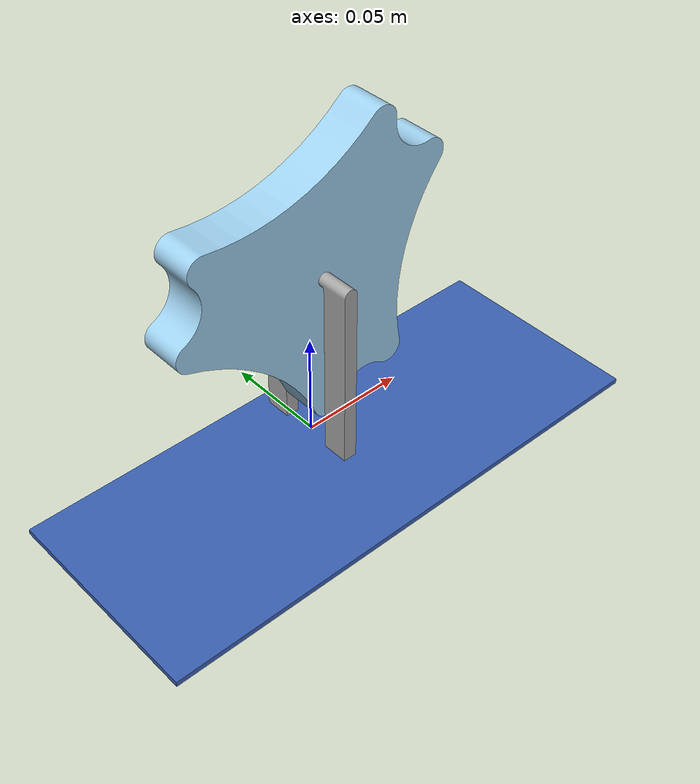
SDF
<sdf version="1.6">
<model name="robot">
<link name="wheel">
<frame name="wheel_frame"><pose>0 0 0 0 -0 0</pose></frame>
<visual name="wheel_0_wheel_visual">
<pose>0.0606385 -0.000454 0.153337 3.14159 -0.753171 3.14159</pose>
<geometry>
<mesh><uri>file:///home/seanghaeli/catkin_ws/src/enph353_ros_lab/sdf/wheel.stl</uri></mesh>
</geometry>
<material><ambient>0.615686 0.811765 0.929412 1</ambient><diffuse>0.615686 0.811765 0.929412 1</diffuse><specular>0.1 0.1 0.1 1</specular><emissive>0 0 0 0</emissive></material>
</visual>
<collision name="wheel_0_wheel_visual">
<pose>0.0606385 -0.000454 0.153337 3.14159 -0.753171 3.14159</pose>
<geometry>
<mesh><uri>file:///home/seanghaeli/Documents/wheel-separate-base//wheel.stl</uri></mesh>
</geometry>
</collision>
<inertial>
<pose frame="wheel_frame">6.93889e-18 -2.04256e-16 0.0886586 0 0 0</pose>
<mass>0.141446</mass>
<inertia><ixx>0.000141657</ixx><ixy>1.14509e-20</ixy><ixz>2.38286e-20</ixz><iyy>0.000273959</iyy><iyz>3.69159e-22</iyz><izz>0.000141657</izz></inertia>
</inertial>
</link>

<link name="stand">
<frame name="stand_frame"><pose>0 0 0 0 -0 0</pose></frame>
<visual name="stand_0_stand_visual">
<pose>0 0 0 0 -0 0</pose>
<geometry>
<mesh><uri>file:///home/seanghaeli/catkin_ws/src/enph353_ros_lab/sdf/stand.stl</uri></mesh>
</geometry>
<material><ambient>0.647059 0.647059 0.647059 1</ambient><diffuse>0.647059 0.647059 0.647059 1</diffuse><specular>0.1 0.1 0.1 1</specular><emissive>0 0 0 0</emissive></material>
</visual>
<collision name="stand_0_stand_visual">
<pose>0 0 0 0 -0 0</pose>
<geometry>
<mesh><uri>file:///home/seanghaeli/catkin_ws/src/enph353_ros_lab/sdf/stand.stl</uri></mesh>
</geometry>
</collision>
<visual name="stand_1_baseplate_visual">
<pose>1.96964e-17 -0.019304 -0.00254 0 -0 0</pose>
<geometry>
<mesh><uri>file:///home/seanghaeli/catkin_ws/src/enph353_ros_lab/sdf/baseplate.stl</uri></mesh>
</geometry>
<material><ambient>0.231373 0.380392 0.705882 1</ambient><diffuse>0.231373 0.380392 0.705882 1</diffuse><specular>0.1 0.1 0.1 1</specular><emissive>0 0 0 0</emissive></material>
</visual>
<collision name="stand_1_baseplate_visual">
<pose>1.96964e-17 -0.019304 -0.00254 0 -0 0</pose>
<geometry>
<mesh><uri>file:///home/seanghaeli/catkin_ws/src/enph353_ros_lab/sdf/baseplate.stl</uri></mesh>
</geometry>
</collision>
<inertial>
<pose frame="stand_frame">2.9244e-19 -2.18736e-05 0.0479151 0 0 0</pose>
<mass>454.107</mass>
<inertia><ixx>0.509851</ixx><ixy>1.04105e-19</ixy><ixz>2.65552e-19</ixz><iyy>0.346627</iyy><iyz>-0.000488553</iyz><izz>0.171953</izz></inertia>
</inertial>
</link>

<joint name="revolute" type="revolute">
<pose>4.33681e-19 -1.38778e-17 0.0886586 -1.5708 -0 0</pose>
<parent>wheel</parent>
<child>stand</child>
<axis>
<xyz>0 0 1</xyz>
<limit><effort>1</effort><velocity>20</velocity></limit>
</axis>
</joint>

</model>
</sdf>
